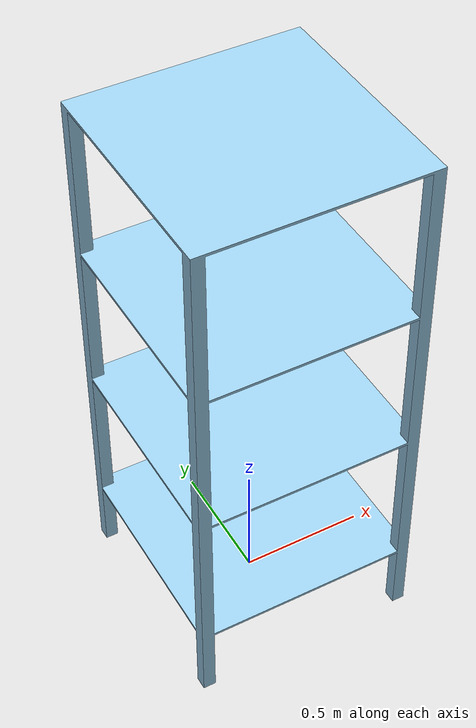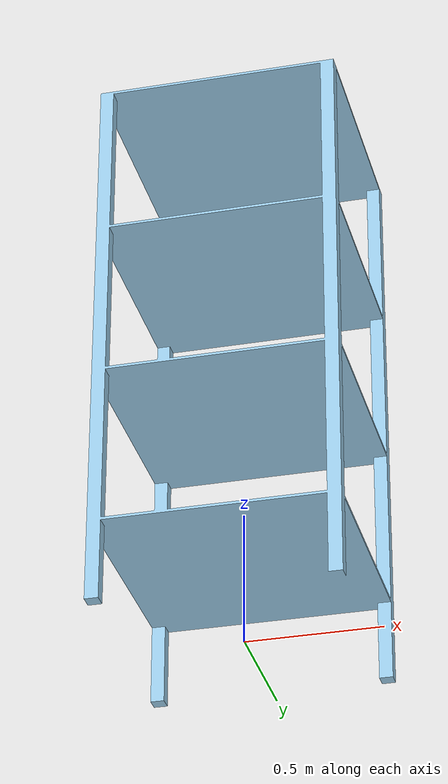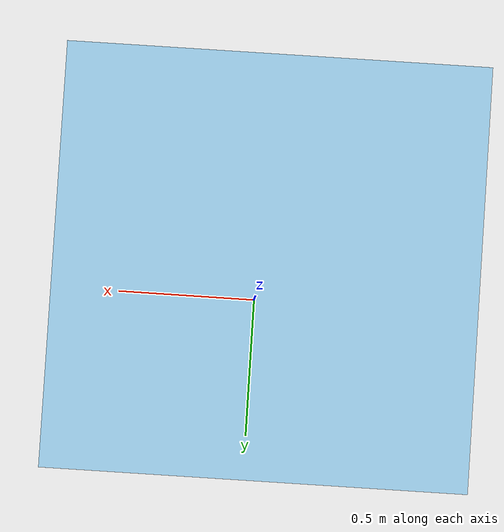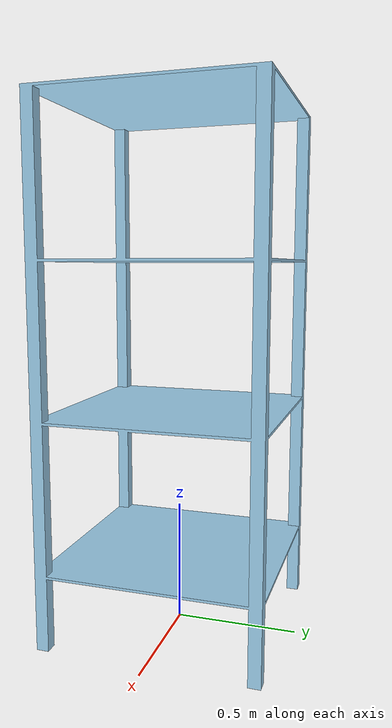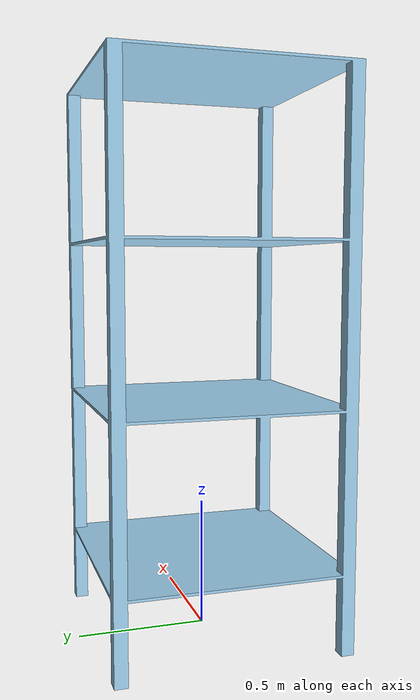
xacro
<?xml version="1.0"?>
<robot name="rack_900" xmlns:xacro="http://www.ros.org/wiki/xacro">
    <link name="rack_base_link"/>
    <link name="rack_box">
        <visual>
            <origin xyz="0 0 0" rpy="0 0 0"/>
            <geometry>
                <mesh filename="package://k3_test_description/meshes/rack_900.dae" scale="1 1 1"/>
            </geometry>
        </visual>
        <collision>
            <origin xyz="0 0 0" rpy="0 0 0"/>
            <geometry>
                <mesh filename="package://k3_test_description/meshes/rack_900.dae" scale="1 1 1"/>
            </geometry>
        </collision>
        <inertial>
            <origin xyz="0 0 1.160" rpy="0 0 0"/>
            <mass value="100"/>
            <inertia ixx="54.91434330682" ixy="0.0" ixz="0.0" iyy="54.91434330682" iyz="0.0" izz="22.4138576779"/>
        </inertial>
    </link>

    <joint name="rack_base_link_fixed" type="fixed">
        <parent link="rack_base_link"/>
        <child link="rack_box"/>
        <origin xyz="0 0 0" rpy="0 0 0"/>
    </joint>

    <gazebo reference="rack_base_link">
        <gravity>0</gravity>
    </gazebo>
</robot>
